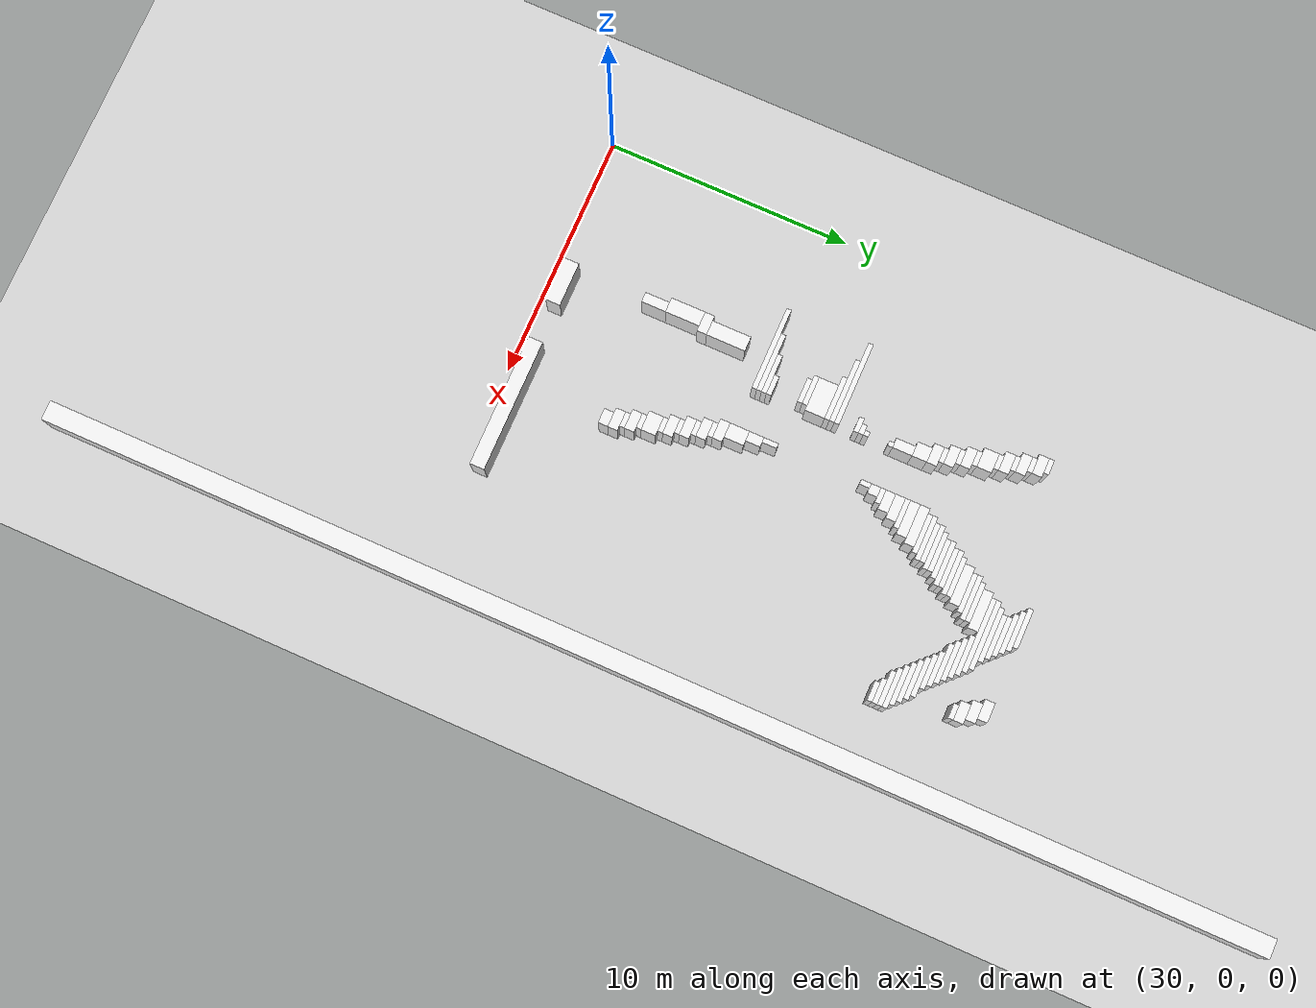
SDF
<sdf version="1.7">
 <world name="default">
  <model name="ground_plane">
   <static>1</static>
   <link name="link">
    <collision name="collision">
     <geometry><plane><normal>0 0 1</normal><size>120 120</size></plane></geometry>
    </collision>
    <visual name="visual">
     <geometry><plane><normal>0 0 1</normal><size>120 120</size></plane></geometry>
     <material>
      <script><uri>file://media/materials/scripts/gazebo.material</uri><name>Gazebo/Grey</name></script>
     </material>
    </visual>
   </link>
  </model>
  <model name="random_complex_03_model">
   <static>1</static>
   <link name="obs_860">
    <pose>41.6000 21.9000 0.8000 0 0 0</pose>
    <collision name="obs_860_col"><geometry><box><size>1.6000 0.2000 1.6000</size></box></geometry></collision>
    <visual name="obs_860_vis">
     <geometry><box><size>1.6000 0.2000 1.6000</size></box></geometry>
     <material>
      <script><uri>file://media/materials/scripts/gazebo.material</uri><name>Gazebo/White</name></script>
     </material>
    </visual>
   </link>
   <link name="obs_862">
    <pose>45.0000 21.8000 0.8000 0 0 0</pose>
    <collision name="obs_862_col"><geometry><box><size>0.8000 0.4000 1.6000</size></box></geometry></collision>
    <visual name="obs_862_vis">
     <geometry><box><size>0.8000 0.4000 1.6000</size></box></geometry>
     <material>
      <script><uri>file://media/materials/scripts/gazebo.material</uri><name>Gazebo/White</name></script>
     </material>
    </visual>
   </link>
   <link name="obs_868">
    <pose>41.8000 21.7000 0.8000 0 0 0</pose>
    <collision name="obs_868_col"><geometry><box><size>1.6000 0.2000 1.6000</size></box></geometry></collision>
    <visual name="obs_868_vis">
     <geometry><box><size>1.6000 0.2000 1.6000</size></box></geometry>
     <material>
      <script><uri>file://media/materials/scripts/gazebo.material</uri><name>Gazebo/White</name></script>
     </material>
    </visual>
   </link>
   <link name="obs_877">
    <pose>42.0000 21.5000 0.8000 0 0 0</pose>
    <collision name="obs_877_col"><geometry><box><size>1.6000 0.2000 1.6000</size></box></geometry></collision>
    <visual name="obs_877_vis">
     <geometry><box><size>1.6000 0.2000 1.6000</size></box></geometry>
     <material>
      <script><uri>file://media/materials/scripts/gazebo.material</uri><name>Gazebo/White</name></script>
     </material>
    </visual>
   </link>
   <link name="obs_879">
    <pose>45.2000 21.4000 0.8000 0 0 0</pose>
    <collision name="obs_879_col"><geometry><box><size>0.8000 0.4000 1.6000</size></box></geometry></collision>
    <visual name="obs_879_vis">
     <geometry><box><size>0.8000 0.4000 1.6000</size></box></geometry>
     <material>
      <script><uri>file://media/materials/scripts/gazebo.material</uri><name>Gazebo/White</name></script>
     </material>
    </visual>
   </link>
   <link name="obs_886">
    <pose>42.2000 21.3000 0.8000 0 0 0</pose>
    <collision name="obs_886_col"><geometry><box><size>1.6000 0.2000 1.6000</size></box></geometry></collision>
    <visual name="obs_886_vis">
     <geometry><box><size>1.6000 0.2000 1.6000</size></box></geometry>
     <material>
      <script><uri>file://media/materials/scripts/gazebo.material</uri><name>Gazebo/White</name></script>
     </material>
    </visual>
   </link>
   <link name="obs_897">
    <pose>42.3000 21.1000 0.8000 0 0 0</pose>
    <collision name="obs_897_col"><geometry><box><size>1.8000 0.2000 1.6000</size></box></geometry></collision>
    <visual name="obs_897_vis">
     <geometry><box><size>1.8000 0.2000 1.6000</size></box></geometry>
     <material>
      <script><uri>file://media/materials/scripts/gazebo.material</uri><name>Gazebo/White</name></script>
     </material>
    </visual>
   </link>
   <link name="obs_901">
    <pose>45.4000 21.0000 0.8000 0 0 0</pose>
    <collision name="obs_901_col"><geometry><box><size>0.8000 0.4000 1.6000</size></box></geometry></collision>
    <visual name="obs_901_vis">
     <geometry><box><size>0.8000 0.4000 1.6000</size></box></geometry>
     <material>
      <script><uri>file://media/materials/scripts/gazebo.material</uri><name>Gazebo/White</name></script>
     </material>
    </visual>
   </link>
   <link name="obs_908">
    <pose>42.3000 20.9000 0.8000 0 0 0</pose>
    <collision name="obs_908_col"><geometry><box><size>2.2000 0.2000 1.6000</size></box></geometry></collision>
    <visual name="obs_908_vis">
     <geometry><box><size>2.2000 0.2000 1.6000</size></box></geometry>
     <material>
      <script><uri>file://media/materials/scripts/gazebo.material</uri><name>Gazebo/White</name></script>
     </material>
    </visual>
   </link>
   <link name="obs_919">
    <pose>42.4000 20.7000 0.8000 0 0 0</pose>
    <collision name="obs_919_col"><geometry><box><size>2.8000 0.2000 1.6000</size></box></geometry></collision>
    <visual name="obs_919_vis">
     <geometry><box><size>2.8000 0.2000 1.6000</size></box></geometry>
     <material>
      <script><uri>file://media/materials/scripts/gazebo.material</uri><name>Gazebo/White</name></script>
     </material>
    </visual>
   </link>
   <link name="obs_920">
    <pose>45.5000 20.7000 0.8000 0 0 0</pose>
    <collision name="obs_920_col"><geometry><box><size>0.6000 0.2000 1.6000</size></box></geometry></collision>
    <visual name="obs_920_vis">
     <geometry><box><size>0.6000 0.2000 1.6000</size></box></geometry>
     <material>
      <script><uri>file://media/materials/scripts/gazebo.material</uri><name>Gazebo/White</name></script>
     </material>
    </visual>
   </link>
   <link name="obs_930">
    <pose>35.5000 20.5000 0.8000 0 0 0</pose>
    <collision name="obs_930_col"><geometry><box><size>0.6000 0.2000 1.6000</size></box></geometry></collision>
    <visual name="obs_930_vis">
     <geometry><box><size>0.6000 0.2000 1.6000</size></box></geometry>
     <material>
      <script><uri>file://media/materials/scripts/gazebo.material</uri><name>Gazebo/White</name></script>
     </material>
    </visual>
   </link>
   <link name="obs_931">
    <pose>42.5000 20.5000 0.8000 0 0 0</pose>
    <collision name="obs_931_col"><geometry><box><size>3.0000 0.2000 1.6000</size></box></geometry></collision>
    <visual name="obs_931_vis">
     <geometry><box><size>3.0000 0.2000 1.6000</size></box></geometry>
     <material>
      <script><uri>file://media/materials/scripts/gazebo.material</uri><name>Gazebo/White</name></script>
     </material>
    </visual>
   </link>
   <link name="obs_941">
    <pose>43.4000 20.3000 0.8000 0 0 0</pose>
    <collision name="obs_941_col"><geometry><box><size>1.6000 0.2000 1.6000</size></box></geometry></collision>
    <visual name="obs_941_vis">
     <geometry><box><size>1.6000 0.2000 1.6000</size></box></geometry>
     <material>
      <script><uri>file://media/materials/scripts/gazebo.material</uri><name>Gazebo/White</name></script>
     </material>
    </visual>
   </link>
   <link name="obs_944">
    <pose>35.6000 20.2000 0.8000 0 0 0</pose>
    <collision name="obs_944_col"><geometry><box><size>0.8000 0.4000 1.6000</size></box></geometry></collision>
    <visual name="obs_944_vis">
     <geometry><box><size>0.8000 0.4000 1.6000</size></box></geometry>
     <material>
      <script><uri>file://media/materials/scripts/gazebo.material</uri><name>Gazebo/White</name></script>
     </material>
    </visual>
   </link>
   <link name="obs_945">
    <pose>41.6000 20.2000 0.8000 0 0 0</pose>
    <collision name="obs_945_col"><geometry><box><size>1.6000 0.4000 1.6000</size></box></geometry></collision>
    <visual name="obs_945_vis">
     <geometry><box><size>1.6000 0.4000 1.6000</size></box></geometry>
     <material>
      <script><uri>file://media/materials/scripts/gazebo.material</uri><name>Gazebo/White</name></script>
     </material>
    </visual>
   </link>
   <link name="obs_951">
    <pose>43.6000 20.1000 0.8000 0 0 0</pose>
    <collision name="obs_951_col"><geometry><box><size>1.6000 0.2000 1.6000</size></box></geometry></collision>
    <visual name="obs_951_vis">
     <geometry><box><size>1.6000 0.2000 1.6000</size></box></geometry>
     <material>
      <script><uri>file://media/materials/scripts/gazebo.material</uri><name>Gazebo/White</name></script>
     </material>
    </visual>
   </link>
   <link name="obs_963">
    <pose>35.7000 19.9000 0.8000 0 0 0</pose>
    <collision name="obs_963_col"><geometry><box><size>0.6000 0.2000 1.6000</size></box></geometry></collision>
    <visual name="obs_963_vis">
     <geometry><box><size>0.6000 0.2000 1.6000</size></box></geometry>
     <material>
      <script><uri>file://media/materials/scripts/gazebo.material</uri><name>Gazebo/White</name></script>
     </material>
    </visual>
   </link>
   <link name="obs_964">
    <pose>41.4000 19.9000 0.8000 0 0 0</pose>
    <collision name="obs_964_col"><geometry><box><size>1.6000 0.2000 1.6000</size></box></geometry></collision>
    <visual name="obs_964_vis">
     <geometry><box><size>1.6000 0.2000 1.6000</size></box></geometry>
     <material>
      <script><uri>file://media/materials/scripts/gazebo.material</uri><name>Gazebo/White</name></script>
     </material>
    </visual>
   </link>
   <link name="obs_965">
    <pose>43.8000 19.9000 0.8000 0 0 0</pose>
    <collision name="obs_965_col"><geometry><box><size>1.6000 0.2000 1.6000</size></box></geometry></collision>
    <visual name="obs_965_vis">
     <geometry><box><size>1.6000 0.2000 1.6000</size></box></geometry>
     <material>
      <script><uri>file://media/materials/scripts/gazebo.material</uri><name>Gazebo/White</name></script>
     </material>
    </visual>
   </link>
   <link name="obs_975">
    <pose>41.3000 19.7000 0.8000 0 0 0</pose>
    <collision name="obs_975_col"><geometry><box><size>1.8000 0.2000 1.6000</size></box></geometry></collision>
    <visual name="obs_975_vis">
     <geometry><box><size>1.8000 0.2000 1.6000</size></box></geometry>
     <material>
      <script><uri>file://media/materials/scripts/gazebo.material</uri><name>Gazebo/White</name></script>
     </material>
    </visual>
   </link>
   <link name="obs_976">
    <pose>44.0000 19.7000 0.8000 0 0 0</pose>
    <collision name="obs_976_col"><geometry><box><size>1.6000 0.2000 1.6000</size></box></geometry></collision>
    <visual name="obs_976_vis">
     <geometry><box><size>1.6000 0.2000 1.6000</size></box></geometry>
     <material>
      <script><uri>file://media/materials/scripts/gazebo.material</uri><name>Gazebo/White</name></script>
     </material>
    </visual>
   </link>
   <link name="obs_979">
    <pose>35.8000 19.6000 0.8000 0 0 0</pose>
    <collision name="obs_979_col"><geometry><box><size>0.8000 0.4000 1.6000</size></box></geometry></collision>
    <visual name="obs_979_vis">
     <geometry><box><size>0.8000 0.4000 1.6000</size></box></geometry>
     <material>
      <script><uri>file://media/materials/scripts/gazebo.material</uri><name>Gazebo/White</name></script>
     </material>
    </visual>
   </link>
   <link name="obs_986">
    <pose>41.2000 19.5000 0.8000 0 0 0</pose>
    <collision name="obs_986_col"><geometry><box><size>1.6000 0.2000 1.6000</size></box></geometry></collision>
    <visual name="obs_986_vis">
     <geometry><box><size>1.6000 0.2000 1.6000</size></box></geometry>
     <material>
      <script><uri>file://media/materials/scripts/gazebo.material</uri><name>Gazebo/White</name></script>
     </material>
    </visual>
   </link>
   <link name="obs_987">
    <pose>44.3000 19.5000 0.8000 0 0 0</pose>
    <collision name="obs_987_col"><geometry><box><size>1.4000 0.2000 1.6000</size></box></geometry></collision>
    <visual name="obs_987_vis">
     <geometry><box><size>1.4000 0.2000 1.6000</size></box></geometry>
     <material>
      <script><uri>file://media/materials/scripts/gazebo.material</uri><name>Gazebo/White</name></script>
     </material>
    </visual>
   </link>
   <link name="obs_994">
    <pose>35.9000 19.3000 0.8000 0 0 0</pose>
    <collision name="obs_994_col"><geometry><box><size>0.6000 0.2000 1.6000</size></box></geometry></collision>
    <visual name="obs_994_vis">
     <geometry><box><size>0.6000 0.2000 1.6000</size></box></geometry>
     <material>
      <script><uri>file://media/materials/scripts/gazebo.material</uri><name>Gazebo/White</name></script>
     </material>
    </visual>
   </link>
   <link name="obs_995">
    <pose>44.5000 19.3000 0.8000 0 0 0</pose>
    <collision name="obs_995_col"><geometry><box><size>1.4000 0.2000 1.6000</size></box></geometry></collision>
    <visual name="obs_995_vis">
     <geometry><box><size>1.4000 0.2000 1.6000</size></box></geometry>
     <material>
      <script><uri>file://media/materials/scripts/gazebo.material</uri><name>Gazebo/White</name></script>
     </material>
    </visual>
   </link>
   <link name="obs_1000">
    <pose>41.0000 19.2000 0.8000 0 0 0</pose>
    <collision name="obs_1000_col"><geometry><box><size>1.6000 0.4000 1.6000</size></box></geometry></collision>
    <visual name="obs_1000_vis">
     <geometry><box><size>1.6000 0.4000 1.6000</size></box></geometry>
     <material>
      <script><uri>file://media/materials/scripts/gazebo.material</uri><name>Gazebo/White</name></script>
     </material>
    </visual>
   </link>
   <link name="obs_1007">
    <pose>44.8000 19.1000 0.8000 0 0 0</pose>
    <collision name="obs_1007_col"><geometry><box><size>1.6000 0.2000 1.6000</size></box></geometry></collision>
    <visual name="obs_1007_vis">
     <geometry><box><size>1.6000 0.2000 1.6000</size></box></geometry>
     <material>
      <script><uri>file://media/materials/scripts/gazebo.material</uri><name>Gazebo/White</name></script>
     </material>
    </visual>
   </link>
   <link name="obs_1009">
    <pose>36.0000 19.0000 0.8000 0 0 0</pose>
    <collision name="obs_1009_col"><geometry><box><size>0.8000 0.4000 1.6000</size></box></geometry></collision>
    <visual name="obs_1009_vis">
     <geometry><box><size>0.8000 0.4000 1.6000</size></box></geometry>
     <material>
      <script><uri>file://media/materials/scripts/gazebo.material</uri><name>Gazebo/White</name></script>
     </material>
    </visual>
   </link>
   <link name="obs_1015">
    <pose>40.8000 18.9000 0.8000 0 0 0</pose>
    <collision name="obs_1015_col"><geometry><box><size>1.6000 0.2000 1.6000</size></box></geometry></collision>
    <visual name="obs_1015_vis">
     <geometry><box><size>1.6000 0.2000 1.6000</size></box></geometry>
     <material>
      <script><uri>file://media/materials/scripts/gazebo.material</uri><name>Gazebo/White</name></script>
     </material>
    </visual>
   </link>
   <link name="obs_1016">
    <pose>45.0000 18.9000 0.8000 0 0 0</pose>
    <collision name="obs_1016_col"><geometry><box><size>1.6000 0.2000 1.6000</size></box></geometry></collision>
    <visual name="obs_1016_vis">
     <geometry><box><size>1.6000 0.2000 1.6000</size></box></geometry>
     <material>
      <script><uri>file://media/materials/scripts/gazebo.material</uri><name>Gazebo/White</name></script>
     </material>
    </visual>
   </link>
   <link name="obs_1023">
    <pose>36.1000 18.7000 0.8000 0 0 0</pose>
    <collision name="obs_1023_col"><geometry><box><size>0.6000 0.2000 1.6000</size></box></geometry></collision>
    <visual name="obs_1023_vis">
     <geometry><box><size>0.6000 0.2000 1.6000</size></box></geometry>
     <material>
      <script><uri>file://media/materials/scripts/gazebo.material</uri><name>Gazebo/White</name></script>
     </material>
    </visual>
   </link>
   <link name="obs_1024">
    <pose>40.7000 18.7000 0.8000 0 0 0</pose>
    <collision name="obs_1024_col"><geometry><box><size>1.8000 0.2000 1.6000</size></box></geometry></collision>
    <visual name="obs_1024_vis">
     <geometry><box><size>1.8000 0.2000 1.6000</size></box></geometry>
     <material>
      <script><uri>file://media/materials/scripts/gazebo.material</uri><name>Gazebo/White</name></script>
     </material>
    </visual>
   </link>
   <link name="obs_1025">
    <pose>45.2000 18.7000 0.8000 0 0 0</pose>
    <collision name="obs_1025_col"><geometry><box><size>1.6000 0.2000 1.6000</size></box></geometry></collision>
    <visual name="obs_1025_vis">
     <geometry><box><size>1.6000 0.2000 1.6000</size></box></geometry>
     <material>
      <script><uri>file://media/materials/scripts/gazebo.material</uri><name>Gazebo/White</name></script>
     </material>
    </visual>
   </link>
   <link name="obs_1033">
    <pose>40.6000 18.5000 0.8000 0 0 0</pose>
    <collision name="obs_1033_col"><geometry><box><size>1.6000 0.2000 1.6000</size></box></geometry></collision>
    <visual name="obs_1033_vis">
     <geometry><box><size>1.6000 0.2000 1.6000</size></box></geometry>
     <material>
      <script><uri>file://media/materials/scripts/gazebo.material</uri><name>Gazebo/White</name></script>
     </material>
    </visual>
   </link>
   <link name="obs_1034">
    <pose>45.4000 18.5000 0.8000 0 0 0</pose>
    <collision name="obs_1034_col"><geometry><box><size>1.6000 0.2000 1.6000</size></box></geometry></collision>
    <visual name="obs_1034_vis">
     <geometry><box><size>1.6000 0.2000 1.6000</size></box></geometry>
     <material>
      <script><uri>file://media/materials/scripts/gazebo.material</uri><name>Gazebo/White</name></script>
     </material>
    </visual>
   </link>
   <link name="obs_1044">
    <pose>40.5000 18.3000 0.8000 0 0 0</pose>
    <collision name="obs_1044_col"><geometry><box><size>1.8000 0.2000 1.6000</size></box></geometry></collision>
    <visual name="obs_1044_vis">
     <geometry><box><size>1.8000 0.2000 1.6000</size></box></geometry>
     <material>
      <script><uri>file://media/materials/scripts/gazebo.material</uri><name>Gazebo/White</name></script>
     </material>
    </visual>
   </link>
   <link name="obs_1045">
    <pose>45.6000 18.3000 0.8000 0 0 0</pose>
    <collision name="obs_1045_col"><geometry><box><size>1.6000 0.2000 1.6000</size></box></geometry></collision>
    <visual name="obs_1045_vis">
     <geometry><box><size>1.6000 0.2000 1.6000</size></box></geometry>
     <material>
      <script><uri>file://media/materials/scripts/gazebo.material</uri><name>Gazebo/White</name></script>
     </material>
    </visual>
   </link>
   <link name="obs_1046">
    <pose>36.2000 18.3000 0.8000 0 0 0</pose>
    <collision name="obs_1046_col"><geometry><box><size>0.8000 0.6000 1.6000</size></box></geometry></collision>
    <visual name="obs_1046_vis">
     <geometry><box><size>0.8000 0.6000 1.6000</size></box></geometry>
     <material>
      <script><uri>file://media/materials/scripts/gazebo.material</uri><name>Gazebo/White</name></script>
     </material>
    </visual>
   </link>
   <link name="obs_1051">
    <pose>40.4000 18.1000 0.8000 0 0 0</pose>
    <collision name="obs_1051_col"><geometry><box><size>1.6000 0.2000 1.6000</size></box></geometry></collision>
    <visual name="obs_1051_vis">
     <geometry><box><size>1.6000 0.2000 1.6000</size></box></geometry>
     <material>
      <script><uri>file://media/materials/scripts/gazebo.material</uri><name>Gazebo/White</name></script>
     </material>
    </visual>
   </link>
   <link name="obs_1052">
    <pose>45.7000 18.1000 0.8000 0 0 0</pose>
    <collision name="obs_1052_col"><geometry><box><size>1.4000 0.2000 1.6000</size></box></geometry></collision>
    <visual name="obs_1052_vis">
     <geometry><box><size>1.4000 0.2000 1.6000</size></box></geometry>
     <material>
      <script><uri>file://media/materials/scripts/gazebo.material</uri><name>Gazebo/White</name></script>
     </material>
    </visual>
   </link>
   <link name="obs_1062">
    <pose>36.3000 17.9000 0.8000 0 0 0</pose>
    <collision name="obs_1062_col"><geometry><box><size>0.6000 0.2000 1.6000</size></box></geometry></collision>
    <visual name="obs_1062_vis">
     <geometry><box><size>0.6000 0.2000 1.6000</size></box></geometry>
     <material>
      <script><uri>file://media/materials/scripts/gazebo.material</uri><name>Gazebo/White</name></script>
     </material>
    </visual>
   </link>
   <link name="obs_1063">
    <pose>40.2000 17.9000 0.8000 0 0 0</pose>
    <collision name="obs_1063_col"><geometry><box><size>1.6000 0.2000 1.6000</size></box></geometry></collision>
    <visual name="obs_1063_vis">
     <geometry><box><size>1.6000 0.2000 1.6000</size></box></geometry>
     <material>
      <script><uri>file://media/materials/scripts/gazebo.material</uri><name>Gazebo/White</name></script>
     </material>
    </visual>
   </link>
   <link name="obs_1064">
    <pose>45.9000 17.9000 0.8000 0 0 0</pose>
    <collision name="obs_1064_col"><geometry><box><size>1.0000 0.2000 1.6000</size></box></geometry></collision>
    <visual name="obs_1064_vis">
     <geometry><box><size>1.0000 0.2000 1.6000</size></box></geometry>
     <material>
      <script><uri>file://media/materials/scripts/gazebo.material</uri><name>Gazebo/White</name></script>
     </material>
    </visual>
   </link>
   <link name="obs_1071">
    <pose>40.1000 17.7000 0.8000 0 0 0</pose>
    <collision name="obs_1071_col"><geometry><box><size>1.8000 0.2000 1.6000</size></box></geometry></collision>
    <visual name="obs_1071_vis">
     <geometry><box><size>1.8000 0.2000 1.6000</size></box></geometry>
     <material>
      <script><uri>file://media/materials/scripts/gazebo.material</uri><name>Gazebo/White</name></script>
     </material>
    </visual>
   </link>
   <link name="obs_1072">
    <pose>46.0000 17.7000 0.8000 0 0 0</pose>
    <collision name="obs_1072_col"><geometry><box><size>0.8000 0.2000 1.6000</size></box></geometry></collision>
    <visual name="obs_1072_vis">
     <geometry><box><size>0.8000 0.2000 1.6000</size></box></geometry>
     <material>
      <script><uri>file://media/materials/scripts/gazebo.material</uri><name>Gazebo/White</name></script>
     </material>
    </visual>
   </link>
   <link name="obs_1075">
    <pose>36.4000 17.6000 0.8000 0 0 0</pose>
    <collision name="obs_1075_col"><geometry><box><size>0.8000 0.4000 1.6000</size></box></geometry></collision>
    <visual name="obs_1075_vis">
     <geometry><box><size>0.8000 0.4000 1.6000</size></box></geometry>
     <material>
      <script><uri>file://media/materials/scripts/gazebo.material</uri><name>Gazebo/White</name></script>
     </material>
    </visual>
   </link>
   <link name="obs_1080">
    <pose>40.0000 17.5000 0.8000 0 0 0</pose>
    <collision name="obs_1080_col"><geometry><box><size>1.6000 0.2000 1.6000</size></box></geometry></collision>
    <visual name="obs_1080_vis">
     <geometry><box><size>1.6000 0.2000 1.6000</size></box></geometry>
     <material>
      <script><uri>file://media/materials/scripts/gazebo.material</uri><name>Gazebo/White</name></script>
     </material>
    </visual>
   </link>
   <link name="obs_1088">
    <pose>36.5000 17.3000 0.8000 0 0 0</pose>
    <collision name="obs_1088_col"><geometry><box><size>0.6000 0.2000 1.6000</size></box></geometry></collision>
    <visual name="obs_1088_vis">
     <geometry><box><size>0.6000 0.2000 1.6000</size></box></geometry>
     <material>
      <script><uri>file://media/materials/scripts/gazebo.material</uri><name>Gazebo/White</name></script>
     </material>
    </visual>
   </link>
   <link name="obs_1089">
    <pose>39.9000 17.3000 0.8000 0 0 0</pose>
    <collision name="obs_1089_col"><geometry><box><size>1.8000 0.2000 1.6000</size></box></geometry></collision>
    <visual name="obs_1089_vis">
     <geometry><box><size>1.8000 0.2000 1.6000</size></box></geometry>
     <material>
      <script><uri>file://media/materials/scripts/gazebo.material</uri><name>Gazebo/White</name></script>
     </material>
    </visual>
   </link>
   <link name="obs_1096">
    <pose>39.8000 17.1000 0.8000 0 0 0</pose>
    <collision name="obs_1096_col"><geometry><box><size>1.6000 0.2000 1.6000</size></box></geometry></collision>
    <visual name="obs_1096_vis">
     <geometry><box><size>1.6000 0.2000 1.6000</size></box></geometry>
     <material>
      <script><uri>file://media/materials/scripts/gazebo.material</uri><name>Gazebo/White</name></script>
     </material>
    </visual>
   </link>
   <link name="obs_1098">
    <pose>36.6000 17.0000 0.8000 0 0 0</pose>
    <collision name="obs_1098_col"><geometry><box><size>0.8000 0.4000 1.6000</size></box></geometry></collision>
    <visual name="obs_1098_vis">
     <geometry><box><size>0.8000 0.4000 1.6000</size></box></geometry>
     <material>
      <script><uri>file://media/materials/scripts/gazebo.material</uri><name>Gazebo/White</name></script>
     </material>
    </visual>
   </link>
   <link name="obs_1104">
    <pose>39.6000 16.8000 0.8000 0 0 0</pose>
    <collision name="obs_1104_col"><geometry><box><size>1.6000 0.4000 1.6000</size></box></geometry></collision>
    <visual name="obs_1104_vis">
     <geometry><box><size>1.6000 0.4000 1.6000</size></box></geometry>
     <material>
      <script><uri>file://media/materials/scripts/gazebo.material</uri><name>Gazebo/White</name></script>
     </material>
    </visual>
   </link>
   <link name="obs_1109">
    <pose>36.7000 16.7000 0.8000 0 0 0</pose>
    <collision name="obs_1109_col"><geometry><box><size>0.6000 0.2000 1.6000</size></box></geometry></collision>
    <visual name="obs_1109_vis">
     <geometry><box><size>0.6000 0.2000 1.6000</size></box></geometry>
     <material>
      <script><uri>file://media/materials/scripts/gazebo.material</uri><name>Gazebo/White</name></script>
     </material>
    </visual>
   </link>
   <link name="obs_1116">
    <pose>36.8000 16.4000 0.8000 0 0 0</pose>
    <collision name="obs_1116_col"><geometry><box><size>0.8000 0.4000 1.6000</size></box></geometry></collision>
    <visual name="obs_1116_vis">
     <geometry><box><size>0.8000 0.4000 1.6000</size></box></geometry>
     <material>
      <script><uri>file://media/materials/scripts/gazebo.material</uri><name>Gazebo/White</name></script>
     </material>
    </visual>
   </link>
   <link name="obs_1117">
    <pose>39.5000 16.4000 0.8000 0 0 0</pose>
    <collision name="obs_1117_col"><geometry><box><size>1.4000 0.4000 1.6000</size></box></geometry></collision>
    <visual name="obs_1117_vis">
     <geometry><box><size>1.4000 0.4000 1.6000</size></box></geometry>
     <material>
      <script><uri>file://media/materials/scripts/gazebo.material</uri><name>Gazebo/White</name></script>
     </material>
    </visual>
   </link>
   <link name="obs_1127">
    <pose>39.4000 16.1000 0.8000 0 0 0</pose>
    <collision name="obs_1127_col"><geometry><box><size>1.2000 0.2000 1.6000</size></box></geometry></collision>
    <visual name="obs_1127_vis">
     <geometry><box><size>1.2000 0.2000 1.6000</size></box></geometry>
     <material>
      <script><uri>file://media/materials/scripts/gazebo.material</uri><name>Gazebo/White</name></script>
     </material>
    </visual>
   </link>
   <link name="obs_1134">
    <pose>36.9000 15.9000 0.8000 0 0 0</pose>
    <collision name="obs_1134_col"><geometry><box><size>0.6000 0.6000 1.6000</size></box></geometry></collision>
    <visual name="obs_1134_vis">
     <geometry><box><size>0.6000 0.6000 1.6000</size></box></geometry>
     <material>
      <script><uri>file://media/materials/scripts/gazebo.material</uri><name>Gazebo/White</name></script>
     </material>
    </visual>
   </link>
   <link name="obs_1136">
    <pose>39.3000 15.8000 0.8000 0 0 0</pose>
    <collision name="obs_1136_col"><geometry><box><size>1.0000 0.4000 1.6000</size></box></geometry></collision>
    <visual name="obs_1136_vis">
     <geometry><box><size>1.0000 0.4000 1.6000</size></box></geometry>
     <material>
      <script><uri>file://media/materials/scripts/gazebo.material</uri><name>Gazebo/White</name></script>
     </material>
    </visual>
   </link>
   <link name="obs_1143">
    <pose>39.2000 15.4000 0.8000 0 0 0</pose>
    <collision name="obs_1143_col"><geometry><box><size>0.8000 0.4000 1.6000</size></box></geometry></collision>
    <visual name="obs_1143_vis">
     <geometry><box><size>0.8000 0.4000 1.6000</size></box></geometry>
     <material>
      <script><uri>file://media/materials/scripts/gazebo.material</uri><name>Gazebo/White</name></script>
     </material>
    </visual>
   </link>
   <link name="obs_1151">
    <pose>39.1000 15.1000 0.8000 0 0 0</pose>
    <collision name="obs_1151_col"><geometry><box><size>0.6000 0.2000 1.6000</size></box></geometry></collision>
    <visual name="obs_1151_vis">
     <geometry><box><size>0.6000 0.2000 1.6000</size></box></geometry>
     <material>
      <script><uri>file://media/materials/scripts/gazebo.material</uri><name>Gazebo/White</name></script>
     </material>
    </visual>
   </link>
   <link name="obs_1152">
    <pose>37.0000 15.2000 0.8000 0 0 0</pose>
    <collision name="obs_1152_col"><geometry><box><size>0.4000 0.8000 1.6000</size></box></geometry></collision>
    <visual name="obs_1152_vis">
     <geometry><box><size>0.4000 0.8000 1.6000</size></box></geometry>
     <material>
      <script><uri>file://media/materials/scripts/gazebo.material</uri><name>Gazebo/White</name></script>
     </material>
    </visual>
   </link>
   <link name="obs_1158">
    <pose>39.0000 14.8000 0.8000 0 0 0</pose>
    <collision name="obs_1158_col"><geometry><box><size>0.4000 0.4000 1.6000</size></box></geometry></collision>
    <visual name="obs_1158_vis">
     <geometry><box><size>0.4000 0.4000 1.6000</size></box></geometry>
     <material>
      <script><uri>file://media/materials/scripts/gazebo.material</uri><name>Gazebo/White</name></script>
     </material>
    </visual>
   </link>
   <link name="obs_1161">
    <pose>37.1000 14.7000 0.8000 0 0 0</pose>
    <collision name="obs_1161_col"><geometry><box><size>0.2000 0.2000 1.6000</size></box></geometry></collision>
    <visual name="obs_1161_vis">
     <geometry><box><size>0.2000 0.2000 1.6000</size></box></geometry>
     <material>
      <script><uri>file://media/materials/scripts/gazebo.material</uri><name>Gazebo/White</name></script>
     </material>
    </visual>
   </link>
   <link name="obs_1168">
    <pose>38.9000 14.4000 0.8000 0 0 0</pose>
    <collision name="obs_1168_col"><geometry><box><size>0.2000 0.4000 1.6000</size></box></geometry></collision>
    <visual name="obs_1168_vis">
     <geometry><box><size>0.2000 0.4000 1.6000</size></box></geometry>
     <material>
      <script><uri>file://media/materials/scripts/gazebo.material</uri><name>Gazebo/White</name></script>
     </material>
    </visual>
   </link>
   <link name="obs_1184">
    <pose>37.1000 13.7000 0.8000 0 0 0</pose>
    <collision name="obs_1184_col"><geometry><box><size>0.2000 0.2000 1.6000</size></box></geometry></collision>
    <visual name="obs_1184_vis">
     <geometry><box><size>0.2000 0.2000 1.6000</size></box></geometry>
     <material>
      <script><uri>file://media/materials/scripts/gazebo.material</uri><name>Gazebo/White</name></script>
     </material>
    </visual>
   </link>
   <link name="obs_1189">
    <pose>37.0000 13.5000 0.8000 0 0 0</pose>
    <collision name="obs_1189_col"><geometry><box><size>0.4000 0.2000 1.6000</size></box></geometry></collision>
    <visual name="obs_1189_vis">
     <geometry><box><size>0.4000 0.2000 1.6000</size></box></geometry>
     <material>
      <script><uri>file://media/materials/scripts/gazebo.material</uri><name>Gazebo/White</name></script>
     </material>
    </visual>
   </link>
   <link name="obs_1197">
    <pose>36.9000 13.3000 0.8000 0 0 0</pose>
    <collision name="obs_1197_col"><geometry><box><size>0.6000 0.2000 1.6000</size></box></geometry></collision>
    <visual name="obs_1197_vis">
     <geometry><box><size>0.6000 0.2000 1.6000</size></box></geometry>
     <material>
      <script><uri>file://media/materials/scripts/gazebo.material</uri><name>Gazebo/White</name></script>
     </material>
    </visual>
   </link>
   <link name="obs_1217">
    <pose>35.5000 12.5000 0.8000 0 0 0</pose>
    <collision name="obs_1217_col"><geometry><box><size>3.4000 0.2000 1.6000</size></box></geometry></collision>
    <visual name="obs_1217_vis">
     <geometry><box><size>3.4000 0.2000 1.6000</size></box></geometry>
     <material>
      <script><uri>file://media/materials/scripts/gazebo.material</uri><name>Gazebo/White</name></script>
     </material>
    </visual>
   </link>
   <link name="obs_1223">
    <pose>35.9000 12.3000 0.8000 0 0 0</pose>
    <collision name="obs_1223_col"><geometry><box><size>2.6000 0.2000 1.6000</size></box></geometry></collision>
    <visual name="obs_1223_vis">
     <geometry><box><size>2.6000 0.2000 1.6000</size></box></geometry>
     <material>
      <script><uri>file://media/materials/scripts/gazebo.material</uri><name>Gazebo/White</name></script>
     </material>
    </visual>
   </link>
   <link name="obs_1229">
    <pose>36.3000 12.1000 0.8000 0 0 0</pose>
    <collision name="obs_1229_col"><geometry><box><size>1.8000 0.2000 1.6000</size></box></geometry></collision>
    <visual name="obs_1229_vis">
     <geometry><box><size>1.8000 0.2000 1.6000</size></box></geometry>
     <material>
      <script><uri>file://media/materials/scripts/gazebo.material</uri><name>Gazebo/White</name></script>
     </material>
    </visual>
   </link>
   <link name="obs_1242">
    <pose>36.5000 11.6000 0.8000 0 0 0</pose>
    <collision name="obs_1242_col"><geometry><box><size>1.4000 0.8000 1.6000</size></box></geometry></collision>
    <visual name="obs_1242_vis">
     <geometry><box><size>1.4000 0.8000 1.6000</size></box></geometry>
     <material>
      <script><uri>file://media/materials/scripts/gazebo.material</uri><name>Gazebo/White</name></script>
     </material>
    </visual>
   </link>
   <link name="obs_1255">
    <pose>36.4000 11.1000 0.8000 0 0 0</pose>
    <collision name="obs_1255_col"><geometry><box><size>1.2000 0.2000 1.6000</size></box></geometry></collision>
    <visual name="obs_1255_vis">
     <geometry><box><size>1.2000 0.2000 1.6000</size></box></geometry>
     <material>
      <script><uri>file://media/materials/scripts/gazebo.material</uri><name>Gazebo/White</name></script>
     </material>
    </visual>
   </link>
   <link name="obs_1266">
    <pose>36.5000 10.9000 0.8000 0 0 0</pose>
    <collision name="obs_1266_col"><geometry><box><size>1.0000 0.2000 1.6000</size></box></geometry></collision>
    <visual name="obs_1266_vis">
     <geometry><box><size>1.0000 0.2000 1.6000</size></box></geometry>
     <material>
      <script><uri>file://media/materials/scripts/gazebo.material</uri><name>Gazebo/White</name></script>
     </material>
    </visual>
   </link>
   <link name="obs_1285">
    <pose>38.9000 10.5000 0.8000 0 0 0</pose>
    <collision name="obs_1285_col"><geometry><box><size>0.2000 0.6000 1.6000</size></box></geometry></collision>
    <visual name="obs_1285_vis">
     <geometry><box><size>0.2000 0.6000 1.6000</size></box></geometry>
     <material>
      <script><uri>file://media/materials/scripts/gazebo.material</uri><name>Gazebo/White</name></script>
     </material>
    </visual>
   </link>
   <link name="obs_1314">
    <pose>39.0000 9.9000 0.8000 0 0 0</pose>
    <collision name="obs_1314_col"><geometry><box><size>0.4000 0.6000 1.6000</size></box></geometry></collision>
    <visual name="obs_1314_vis">
     <geometry><box><size>0.4000 0.6000 1.6000</size></box></geometry>
     <material>
      <script><uri>file://media/materials/scripts/gazebo.material</uri><name>Gazebo/White</name></script>
     </material>
    </visual>
   </link>
   <link name="obs_1323">
    <pose>36.8000 9.7000 0.8000 0 0 0</pose>
    <collision name="obs_1323_col"><geometry><box><size>0.8000 0.2000 1.6000</size></box></geometry></collision>
    <visual name="obs_1323_vis">
     <geometry><box><size>0.8000 0.2000 1.6000</size></box></geometry>
     <material>
      <script><uri>file://media/materials/scripts/gazebo.material</uri><name>Gazebo/White</name></script>
     </material>
    </visual>
   </link>
   <link name="obs_1333">
    <pose>36.4000 9.5000 0.8000 0 0 0</pose>
    <collision name="obs_1333_col"><geometry><box><size>1.6000 0.2000 1.6000</size></box></geometry></collision>
    <visual name="obs_1333_vis">
     <geometry><box><size>1.6000 0.2000 1.6000</size></box></geometry>
     <material>
      <script><uri>file://media/materials/scripts/gazebo.material</uri><name>Gazebo/White</name></script>
     </material>
    </visual>
   </link>
   <link name="obs_1343">
    <pose>36.0000 9.3000 0.8000 0 0 0</pose>
    <collision name="obs_1343_col"><geometry><box><size>2.4000 0.2000 1.6000</size></box></geometry></collision>
    <visual name="obs_1343_vis">
     <geometry><box><size>2.4000 0.2000 1.6000</size></box></geometry>
     <material>
      <script><uri>file://media/materials/scripts/gazebo.material</uri><name>Gazebo/White</name></script>
     </material>
    </visual>
   </link>
   <link name="obs_1349">
    <pose>35.5000 9.1000 0.8000 0 0 0</pose>
    <collision name="obs_1349_col"><geometry><box><size>3.4000 0.2000 1.6000</size></box></geometry></collision>
    <visual name="obs_1349_vis">
     <geometry><box><size>3.4000 0.2000 1.6000</size></box></geometry>
     <material>
      <script><uri>file://media/materials/scripts/gazebo.material</uri><name>Gazebo/White</name></script>
     </material>
    </visual>
   </link>
   <link name="obs_1350">
    <pose>39.1000 9.2000 0.8000 0 0 0</pose>
    <collision name="obs_1350_col"><geometry><box><size>0.6000 0.8000 1.6000</size></box></geometry></collision>
    <visual name="obs_1350_vis">
     <geometry><box><size>0.6000 0.8000 1.6000</size></box></geometry>
     <material>
      <script><uri>file://media/materials/scripts/gazebo.material</uri><name>Gazebo/White</name></script>
     </material>
    </visual>
   </link>
   <link name="obs_1365">
    <pose>39.2000 8.6000 0.8000 0 0 0</pose>
    <collision name="obs_1365_col"><geometry><box><size>0.8000 0.4000 1.6000</size></box></geometry></collision>
    <visual name="obs_1365_vis">
     <geometry><box><size>0.8000 0.4000 1.6000</size></box></geometry>
     <material>
      <script><uri>file://media/materials/scripts/gazebo.material</uri><name>Gazebo/White</name></script>
     </material>
    </visual>
   </link>
   <link name="obs_1380">
    <pose>39.3000 8.3000 0.8000 0 0 0</pose>
    <collision name="obs_1380_col"><geometry><box><size>0.6000 0.2000 1.6000</size></box></geometry></collision>
    <visual name="obs_1380_vis">
     <geometry><box><size>0.6000 0.2000 1.6000</size></box></geometry>
     <material>
      <script><uri>file://media/materials/scripts/gazebo.material</uri><name>Gazebo/White</name></script>
     </material>
    </visual>
   </link>
   <link name="obs_1388">
    <pose>39.4000 8.0000 0.8000 0 0 0</pose>
    <collision name="obs_1388_col"><geometry><box><size>0.8000 0.4000 1.6000</size></box></geometry></collision>
    <visual name="obs_1388_vis">
     <geometry><box><size>0.8000 0.4000 1.6000</size></box></geometry>
     <material>
      <script><uri>file://media/materials/scripts/gazebo.material</uri><name>Gazebo/White</name></script>
     </material>
    </visual>
   </link>
   <link name="obs_1397">
    <pose>39.5000 7.7000 0.8000 0 0 0</pose>
    <collision name="obs_1397_col"><geometry><box><size>0.6000 0.2000 1.6000</size></box></geometry></collision>
    <visual name="obs_1397_vis">
     <geometry><box><size>0.6000 0.2000 1.6000</size></box></geometry>
     <material>
      <script><uri>file://media/materials/scripts/gazebo.material</uri><name>Gazebo/White</name></script>
     </material>
    </visual>
   </link>
   <link name="obs_1408">
    <pose>39.6000 7.4000 0.8000 0 0 0</pose>
    <collision name="obs_1408_col"><geometry><box><size>0.8000 0.4000 1.6000</size></box></geometry></collision>
    <visual name="obs_1408_vis">
     <geometry><box><size>0.8000 0.4000 1.6000</size></box></geometry>
     <material>
      <script><uri>file://media/materials/scripts/gazebo.material</uri><name>Gazebo/White</name></script>
     </material>
    </visual>
   </link>
   <link name="obs_1420">
    <pose>39.7000 7.1000 0.8000 0 0 0</pose>
    <collision name="obs_1420_col"><geometry><box><size>0.6000 0.2000 1.6000</size></box></geometry></collision>
    <visual name="obs_1420_vis">
     <geometry><box><size>0.6000 0.2000 1.6000</size></box></geometry>
     <material>
      <script><uri>file://media/materials/scripts/gazebo.material</uri><name>Gazebo/White</name></script>
     </material>
    </visual>
   </link>
   <link name="obs_1428">
    <pose>35.7000 7.4000 0.8000 0 0 0</pose>
    <collision name="obs_1428_col"><geometry><box><size>0.6000 1.6000 1.6000</size></box></geometry></collision>
    <visual name="obs_1428_vis">
     <geometry><box><size>0.6000 1.6000 1.6000</size></box></geometry>
     <material>
      <script><uri>file://media/materials/scripts/gazebo.material</uri><name>Gazebo/White</name></script>
     </material>
    </visual>
   </link>
   <link name="obs_1430">
    <pose>39.8000 6.8000 0.8000 0 0 0</pose>
    <collision name="obs_1430_col"><geometry><box><size>0.8000 0.4000 1.6000</size></box></geometry></collision>
    <visual name="obs_1430_vis">
     <geometry><box><size>0.8000 0.4000 1.6000</size></box></geometry>
     <material>
      <script><uri>file://media/materials/scripts/gazebo.material</uri><name>Gazebo/White</name></script>
     </material>
    </visual>
   </link>
   <link name="obs_1441">
    <pose>39.9000 6.5000 0.8000 0 0 0</pose>
    <collision name="obs_1441_col"><geometry><box><size>0.6000 0.2000 1.6000</size></box></geometry></collision>
    <visual name="obs_1441_vis">
     <geometry><box><size>0.6000 0.2000 1.6000</size></box></geometry>
     <material>
      <script><uri>file://media/materials/scripts/gazebo.material</uri><name>Gazebo/White</name></script>
     </material>
    </visual>
   </link>
   <link name="obs_1444">
    <pose>35.6000 6.4000 0.8000 0 0 0</pose>
    <collision name="obs_1444_col"><geometry><box><size>0.8000 0.4000 1.6000</size></box></geometry></collision>
    <visual name="obs_1444_vis">
     <geometry><box><size>0.8000 0.4000 1.6000</size></box></geometry>
     <material>
      <script><uri>file://media/materials/scripts/gazebo.material</uri><name>Gazebo/White</name></script>
     </material>
    </visual>
   </link>
   <link name="obs_1454">
    <pose>40.0000 6.1000 0.8000 0 0 0</pose>
    <collision name="obs_1454_col"><geometry><box><size>0.8000 0.6000 1.6000</size></box></geometry></collision>
    <visual name="obs_1454_vis">
     <geometry><box><size>0.8000 0.6000 1.6000</size></box></geometry>
     <material>
      <script><uri>file://media/materials/scripts/gazebo.material</uri><name>Gazebo/White</name></script>
     </material>
    </visual>
   </link>
   <link name="obs_1467">
    <pose>40.1000 5.7000 0.8000 0 0 0</pose>
    <collision name="obs_1467_col"><geometry><box><size>0.6000 0.2000 1.6000</size></box></geometry></collision>
    <visual name="obs_1467_vis">
     <geometry><box><size>0.6000 0.2000 1.6000</size></box></geometry>
     <material>
      <script><uri>file://media/materials/scripts/gazebo.material</uri><name>Gazebo/White</name></script>
     </material>
    </visual>
   </link>
   <link name="obs_1479">
    <pose>40.2000 5.4000 0.8000 0 0 0</pose>
    <collision name="obs_1479_col"><geometry><box><size>0.8000 0.4000 1.6000</size></box></geometry></collision>
    <visual name="obs_1479_vis">
     <geometry><box><size>0.8000 0.4000 1.6000</size></box></geometry>
     <material>
      <script><uri>file://media/materials/scripts/gazebo.material</uri><name>Gazebo/White</name></script>
     </material>
    </visual>
   </link>
   <link name="obs_1493">
    <pose>40.3000 5.1000 0.8000 0 0 0</pose>
    <collision name="obs_1493_col"><geometry><box><size>0.6000 0.2000 1.6000</size></box></geometry></collision>
    <visual name="obs_1493_vis">
     <geometry><box><size>0.6000 0.2000 1.6000</size></box></geometry>
     <material>
      <script><uri>file://media/materials/scripts/gazebo.material</uri><name>Gazebo/White</name></script>
     </material>
    </visual>
   </link>
   <link name="obs_1496">
    <pose>35.5000 5.5000 0.8000 0 0 0</pose>
    <collision name="obs_1496_col"><geometry><box><size>0.6000 1.4000 1.6000</size></box></geometry></collision>
    <visual name="obs_1496_vis">
     <geometry><box><size>0.6000 1.4000 1.6000</size></box></geometry>
     <material>
      <script><uri>file://media/materials/scripts/gazebo.material</uri><name>Gazebo/White</name></script>
     </material>
    </visual>
   </link>
   <link name="obs_1504">
    <pose>40.4000 4.8000 0.8000 0 0 0</pose>
    <collision name="obs_1504_col"><geometry><box><size>0.8000 0.4000 1.6000</size></box></geometry></collision>
    <visual name="obs_1504_vis">
     <geometry><box><size>0.8000 0.4000 1.6000</size></box></geometry>
     <material>
      <script><uri>file://media/materials/scripts/gazebo.material</uri><name>Gazebo/White</name></script>
     </material>
    </visual>
   </link>
   <link name="obs_1512">
    <pose>40.5000 4.4000 0.8000 0 0 0</pose>
    <collision name="obs_1512_col"><geometry><box><size>0.6000 0.4000 1.6000</size></box></geometry></collision>
    <visual name="obs_1512_vis">
     <geometry><box><size>0.6000 0.4000 1.6000</size></box></geometry>
     <material>
      <script><uri>file://media/materials/scripts/gazebo.material</uri><name>Gazebo/White</name></script>
     </material>
    </visual>
   </link>
   <link name="obs_1520">
    <pose>35.6000 4.3000 0.8000 0 0 0</pose>
    <collision name="obs_1520_col"><geometry><box><size>0.4000 1.0000 1.6000</size></box></geometry></collision>
    <visual name="obs_1520_vis">
     <geometry><box><size>0.4000 1.0000 1.6000</size></box></geometry>
     <material>
      <script><uri>file://media/materials/scripts/gazebo.material</uri><name>Gazebo/White</name></script>
     </material>
    </visual>
   </link>
   <link name="obs_1604">
    <pose>36.3000 0.7000 0.8000 0 0 0</pose>
    <collision name="obs_1604_col"><geometry><box><size>1.8000 0.6000 1.6000</size></box></geometry></collision>
    <visual name="obs_1604_vis">
     <geometry><box><size>1.8000 0.6000 1.6000</size></box></geometry>
     <material>
      <script><uri>file://media/materials/scripts/gazebo.material</uri><name>Gazebo/White</name></script>
     </material>
    </visual>
   </link>
   <link name="obs_1605">
    <pose>41.5000 0.7000 0.8000 0 0 0</pose>
    <collision name="obs_1605_col"><geometry><box><size>5.4000 0.6000 1.6000</size></box></geometry></collision>
    <visual name="obs_1605_vis">
     <geometry><box><size>5.4000 0.6000 1.6000</size></box></geometry>
     <material>
      <script><uri>file://media/materials/scripts/gazebo.material</uri><name>Gazebo/White</name></script>
     </material>
    </visual>
   </link>
   <link name="obs_2125">
    <pose>48.8000 9.7000 0.8000 0 0 0</pose>
    <collision name="obs_2125_col"><geometry><box><size>0.8000 49.8000 1.6000</size></box></geometry></collision>
    <visual name="obs_2125_vis">
     <geometry><box><size>0.8000 49.8000 1.6000</size></box></geometry>
     <material>
      <script><uri>file://media/materials/scripts/gazebo.material</uri><name>Gazebo/White</name></script>
     </material>
    </visual>
   </link>
  </model>
 </world>
</sdf>
